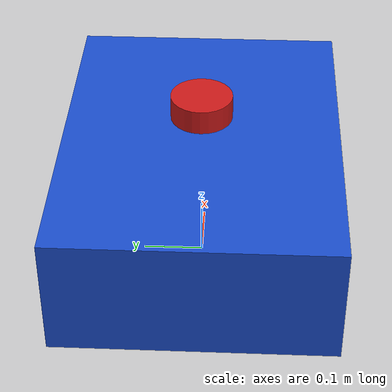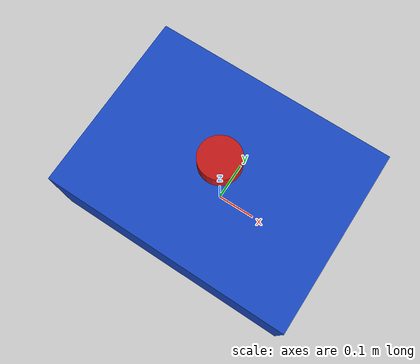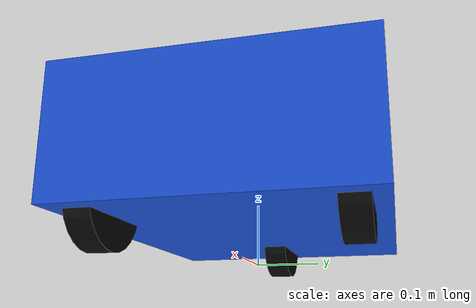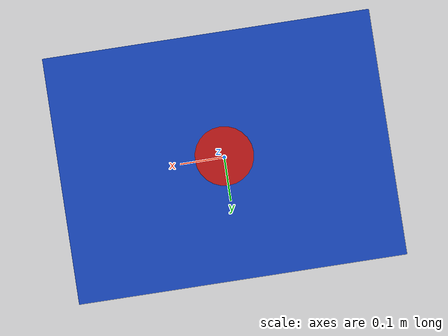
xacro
<?xml version="1.0"?>

<robot xmlns:xacro="http://www.ros.org/wiki/xacro"
       name="omni_rover">

  <!-- Materials                 -->

  <material name="blue">
    <color rgba="0.1 0.3 0.8 1.0"/>
  </material>

  <material name="black">
    <color rgba="0.05 0.05 0.05 1.0"/>
  </material>

  <material name="red">
    <color rgba="0.8 0.1 0.1 1.0"/>
  </material>

  <!-- Base                      -->

  <link name="base_link">

    <visual>
      <origin xyz="0 0 0.15" rpy="0 0 0"/>

      <geometry>
        <box size="0.60 0.45 0.20"/>
      </geometry>

      <material name="blue"/>
    </visual>

    <collision>
      <origin xyz="0 0 0.15" rpy="0 0 0"/>

      <geometry>
        <box size="0.60 0.45 0.20"/>
      </geometry>
    </collision>

    <inertial>
      <origin xyz="0 0 0.15"/>

      <mass value="10.0"/>

      <inertia
        ixx="0.5"
        ixy="0.0"
        ixz="0.0"
        iyy="0.5"
        iyz="0.0"
        izz="0.5"/>
    </inertial>

  </link>

  <!-- Front Left Wheel          -->

  <link name="wheel_front_left">

    <visual>
      <origin xyz="0 0 0" rpy="1.5708 0 0"/>

      <geometry>
        <cylinder radius="0.075" length="0.04"/>
      </geometry>

      <material name="black"/>
    </visual>

    <collision>
      <origin xyz="0 0 0" rpy="1.5708 0 0"/>

      <geometry>
        <cylinder radius="0.075" length="0.04"/>
      </geometry>
    </collision>

  </link>

  <joint name="wheel_front_left_joint"
         type="continuous">

    <parent link="base_link"/>
    <child link="wheel_front_left"/>

    <origin xyz="0.20 0.18 0.075"
            rpy="0 0 0"/>

    <axis xyz="0 1 0"/>

  </joint>

  <!-- Front Right Wheel         -->

  <link name="wheel_front_right">

    <visual>
      <origin xyz="0 0 0" rpy="1.5708 0 0"/>

      <geometry>
        <cylinder radius="0.075" length="0.04"/>
      </geometry>

      <material name="black"/>
    </visual>

    <collision>
      <origin xyz="0 0 0" rpy="1.5708 0 0"/>

      <geometry>
        <cylinder radius="0.075" length="0.04"/>
      </geometry>
    </collision>

  </link>

  <joint name="wheel_front_right_joint"
         type="continuous">

    <parent link="base_link"/>
    <child link="wheel_front_right"/>

    <origin xyz="0.20 -0.18 0.075"
            rpy="0 0 0"/>

    <axis xyz="0 1 0"/>

  </joint>

  <!-- Rear Wheel                -->

  <link name="wheel_rear">

    <visual>
      <origin xyz="0 0 0" rpy="1.5708 0 0"/>

      <geometry>
        <cylinder radius="0.075" length="0.04"/>
      </geometry>

      <material name="black"/>
    </visual>

    <collision>
      <origin xyz="0 0 0" rpy="1.5708 0 0"/>

      <geometry>
        <cylinder radius="0.075" length="0.04"/>
      </geometry>
    </collision>

  </link>

  <joint name="wheel_rear_joint"
         type="continuous">

    <parent link="base_link"/>
    <child link="wheel_rear"/>

    <origin xyz="-0.20 0 0.075"
            rpy="0 0 0"/>

    <axis xyz="0 1 0"/>

  </joint>

  <!-- LIDAR                    -->

  <link name="laser">

    <visual>

      <origin xyz="0 0 0" rpy="0 0 0"/>

      <geometry>
        <cylinder radius="0.05" length="0.04"/>
      </geometry>

      <material name="red"/>

    </visual>

  </link>

  <joint name="laser_joint"
         type="fixed">

    <parent link="base_link"/>
    <child link="laser"/>

    <origin xyz="0 0 0.30"
            rpy="0 0 0"/>

  </joint>

</robot>
